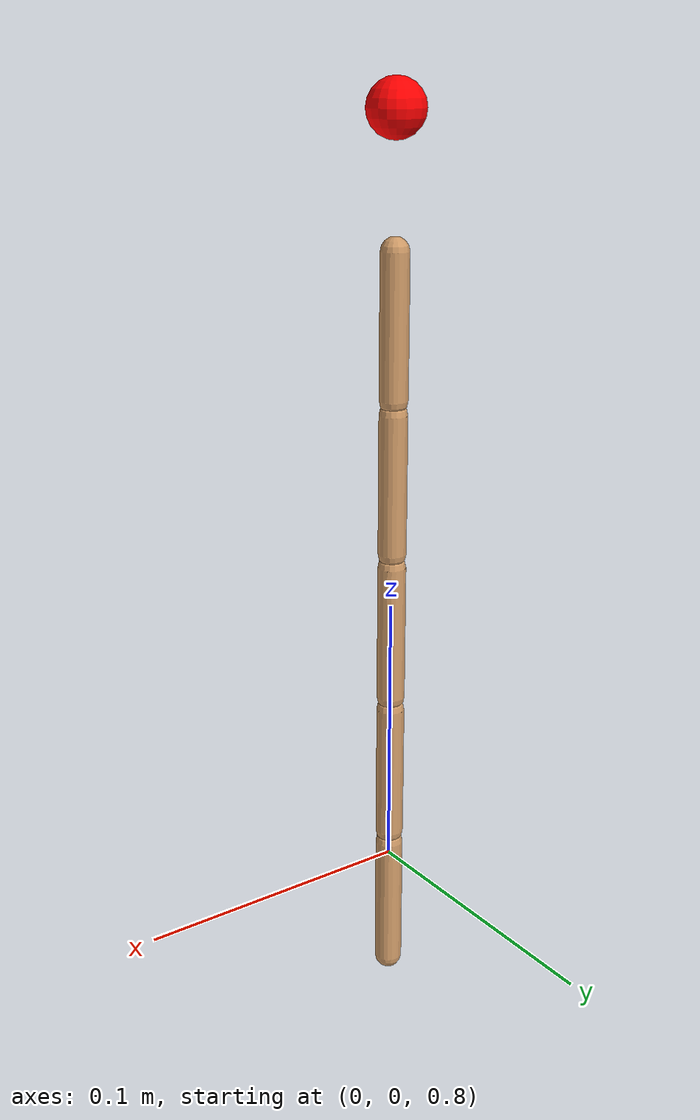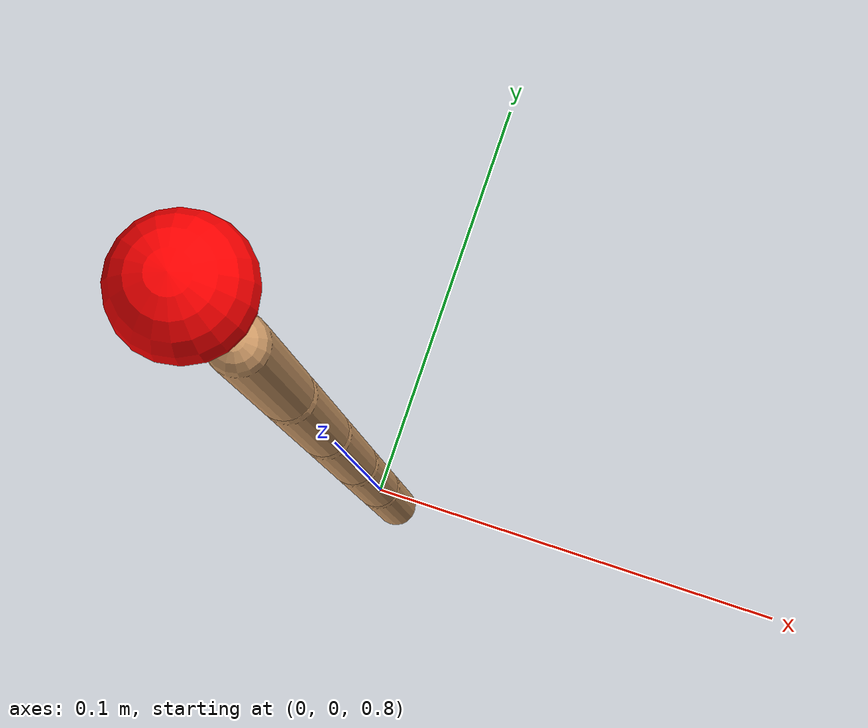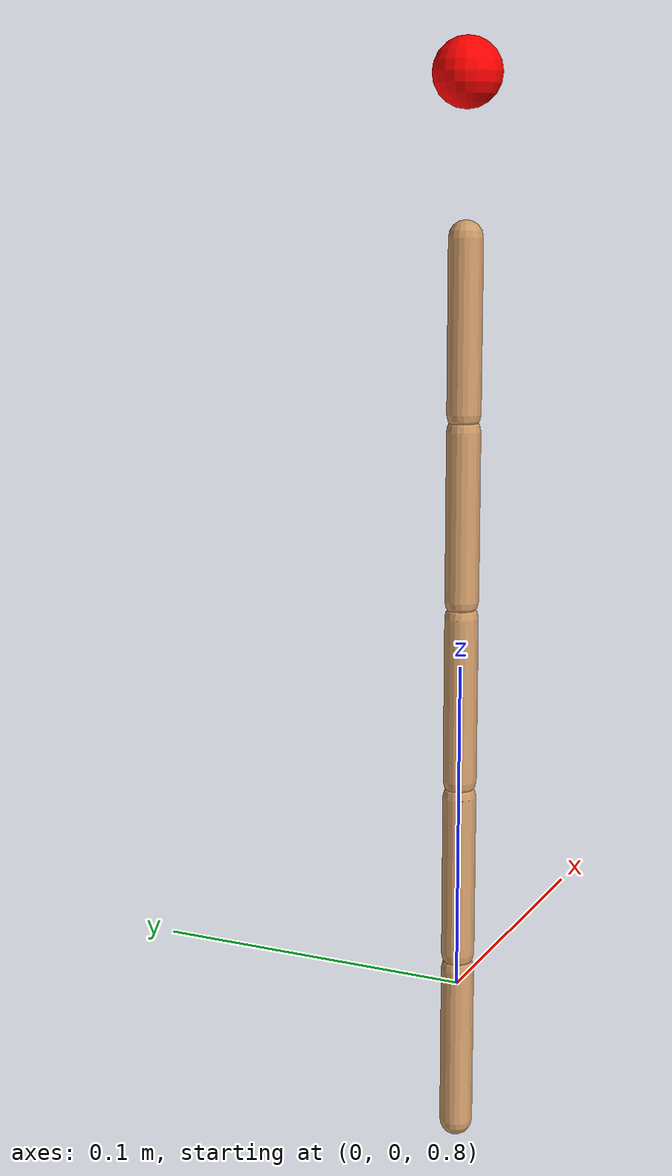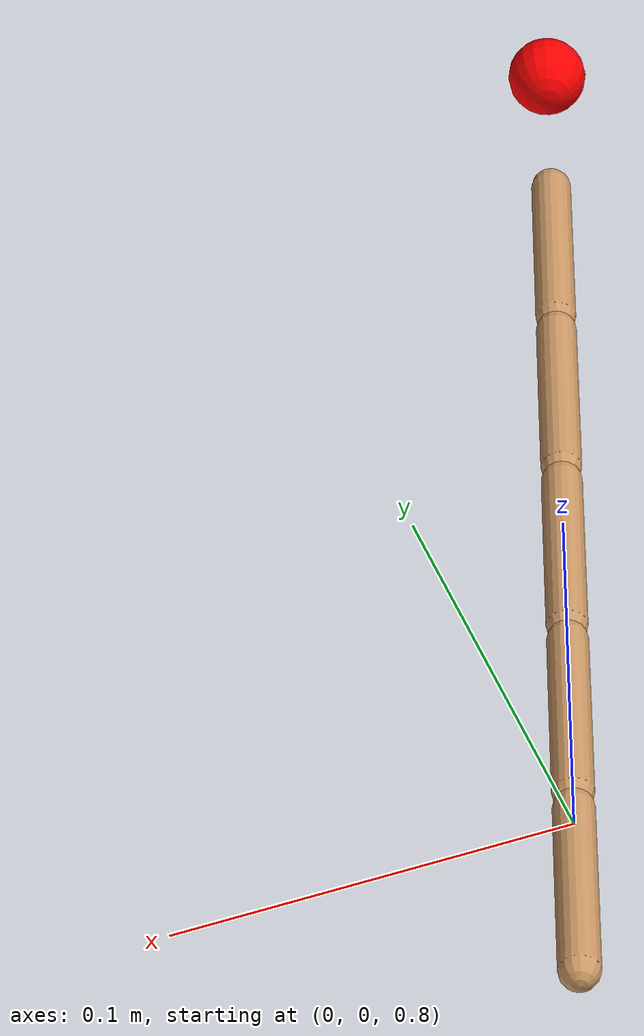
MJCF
<mujoco model="cable_5seg">
    <worldbody>
        <body name="anchor" pos="0 0 1.07">
            <geom type="sphere" size="0.01" rgba="1 0 0 1" contype="0" conaffinity="0"/>
        </body>

        <body name="B0" pos="0 0 1.0">
            <freejoint/>
            <geom type="capsule" size="0.005 0.025" mass="0.001" rgba="0.8 0.6 0.4 1"/>
            <body name="B1" pos="0 0 -0.055">
                <joint type="ball" damping="0.01" armature="0.001"/>
                <geom type="capsule" size="0.005 0.025" mass="0.001" rgba="0.8 0.6 0.4 1"/>
                <body name="B2" pos="0 0 -0.055">
                    <joint type="ball" damping="0.01" armature="0.001"/>
                    <geom type="capsule" size="0.005 0.025" mass="0.001" rgba="0.8 0.6 0.4 1"/>
                    <body name="B3" pos="0 0 -0.055">
                        <joint type="ball" damping="0.01" armature="0.001"/>
                        <geom type="capsule" size="0.005 0.025" mass="0.001" rgba="0.8 0.6 0.4 1"/>
                        <body name="B4" pos="0 0 -0.055">
                            <joint type="ball" damping="0.01" armature="0.001"/>
                            <geom type="capsule" size="0.005 0.025" mass="0.001" rgba="0.8 0.6 0.4 1"/>
                        </body>
                    </body>
                </body>
            </body>
        </body>
    </worldbody>

    <equality>
        <weld body1="B0" body2="anchor"/>
    </equality>
</mujoco>
